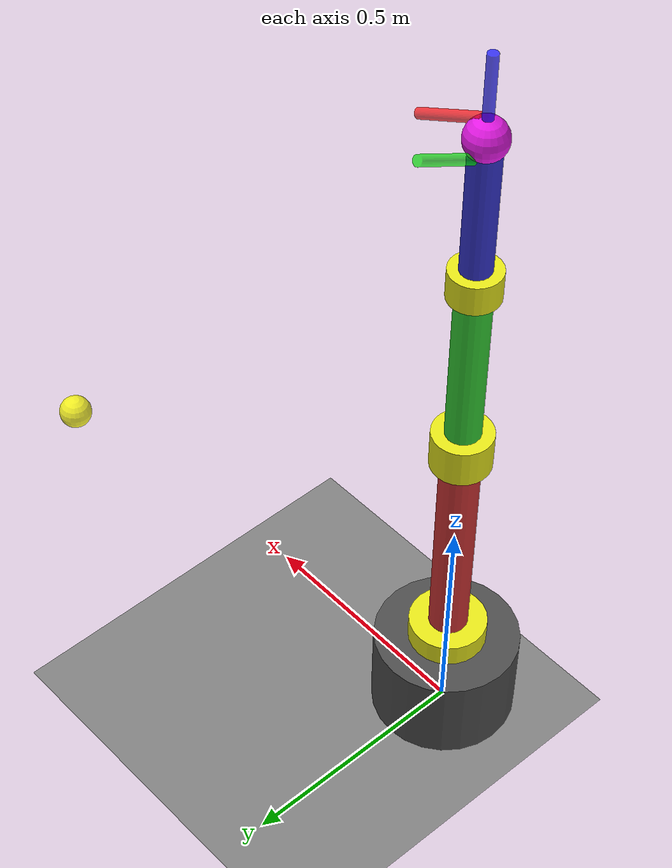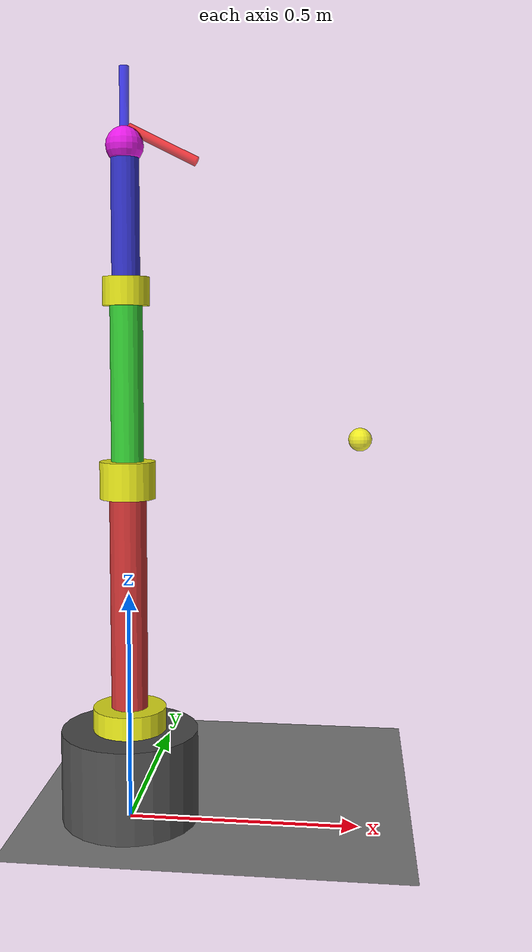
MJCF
<mujoco model="three_joint_arm">
  <compiler angle="radian"/>

  <!-- 恢复重力并调整时间步长 -->
  <option timestep="0.002" gravity="0 0 -9.81" integrator="RK4"/>

  <asset>
    <material name="base_mat" rgba="0.3 0.3 0.3 1"/>
    <material name="link1_mat" rgba="0.8 0.2 0.2 1"/>
    <material name="link2_mat" rgba="0.2 0.8 0.2 1"/>
    <material name="link3_mat" rgba="0.2 0.2 0.8 1"/>
    <material name="joint_mat" rgba="0.9 0.9 0.1 1"/>
    <material name="end_effector_mat" rgba="0.9 0.1 0.9 1"/>
    <material name="ground_mat" rgba="0.5 0.5 0.5 1"/>
  </asset>

  <worldbody>
    <light directional="true" pos="0 0 4"/>
    <geom name="ground" type="plane" size="3 3 0.1" material="ground_mat"/>

    <!-- 机械臂基座 -->
    <body name="base" pos="0 0 0.1">
      <geom name="base_geom" type="cylinder" size="0.15 0.1" material="base_mat"/>

      <!-- 第一个关节和连杆 -->
      <body name="link1" pos="0 0 0.1">
        <!-- 关节1 (基座旋转) - 减少阻尼 -->
        <joint name="joint1" type="hinge" axis="0 0 1" range="-3.14159 3.14159" damping="0.1"/>

        <geom name="joint1_geom" type="cylinder" size="0.08 0.05" material="joint_mat"/>
        <geom name="link1_geom" type="capsule" size="0.04" fromto="0 0 0.05 0 0 0.55" material="link1_mat"/>

        <!-- 第二个关节和连杆 -->
        <body name="link2" pos="0 0 0.5">
          <!-- 关节2 (肩关节) - 减少阻尼 -->
          <joint name="joint2" type="hinge" axis="1 0 0" range="-3.14159 3.14159" pos="0 0 0.05" damping="0.05"/>

          <geom name="joint2_geom" type="cylinder" size="0.06 0.04" material="joint_mat" pos="0 0 0.05"/>
          <geom name="link2_geom" type="capsule" size="0.035" fromto="0 0 0.05 0 0 0.45" material="link2_mat"/>

          <!-- 第三个关节和连杆 -->
          <body name="link3" pos="0 0 0.4">
            <!-- 关节3 (肘关节) - 减少阻尼 -->
            <joint name="joint3" type="hinge" axis="1 0 0" range="-3.14159 3.14159" pos="0 0 0.05" damping="0.02"/>

            <geom name="joint3_geom" type="cylinder" size="0.05 0.03" material="joint_mat" pos="0 0 0.05"/>
            <geom name="link3_geom" type="capsule" size="0.03" fromto="0 0 0.05 0 0 0.35" material="link3_mat"/>

            <!-- 末端执行器 -->
            <body name="end_effector" pos="0 0 0.35">
              <geom name="end_effector_geom" type="sphere" size="0.04" material="end_effector_mat"/>

              <!-- 末端执行器坐标系可视化 -->
              <geom name="ee_x_axis" type="cylinder" size="0.01 0.08" rgba="1 0 0 0.7" pos="0.08 0 0" euler="0 90 0"/>
              <geom name="ee_y_axis" type="cylinder" size="0.01 0.08" rgba="0 1 0 0.7" pos="0 0.08 0" euler="90 0 0"/>
              <geom name="ee_z_axis" type="cylinder" size="0.01 0.08" rgba="0 0 1 0.7" pos="0 0 0.08"/>
            </body>
          </body>
        </body>
      </body>
    </body>

    <!-- 目标点可视化 -->
    <body name="target" pos="0.5 0.5 0.8">
      <geom name="target_geom" type="sphere" size="0.03" rgba="1 1 0 0.8" contype="0" conaffinity="0"/>
    </body>

  </worldbody>

  <!-- 强化的执行器定义 -->
  <actuator>
    <!-- 使用motor类型提供更强力矩，并设置高增益 -->

    <!-- 或者使用position执行器但增加kp参数 -->

    <position name="servo1" joint="joint1" ctrlrange="-3.14159 3.14159" kp="100" kv="5"/>
    <position name="servo2" joint="joint2" ctrlrange="-3.14159 3.14159" kp="150" kv="5"/>
    <position name="servo3" joint="joint3" ctrlrange="-3.14159 3.14159" kp="80" kv="5"/>

  </actuator>

  <!-- 传感器定义 -->
  <sensor>
    <jointpos name="joint1_pos" joint="joint1"/>
    <jointpos name="joint2_pos" joint="joint2"/>
    <jointpos name="joint3_pos" joint="joint3"/>
    <jointvel name="joint1_vel" joint="joint1"/>
    <jointvel name="joint2_vel" joint="joint2"/>
    <jointvel name="joint3_vel" joint="joint3"/>
    <framepos name="end_effector_pos" objtype="body" objname="end_effector"/>
    <framequat name="end_effector_quat" objtype="body" objname="end_effector"/>
  </sensor>

  <!-- 关键帧定义 -->
  <keyframe>
    <key name="home" qpos="0 -0.785 0.785"/>
    <key name="pose1" qpos="0.785 0.524 -1.047"/>
    <key name="pose2" qpos="-0.785 1.047 -1.571"/>
    <key name="pose3" qpos="0 1.571 0"/>
  </keyframe>

</mujoco>
